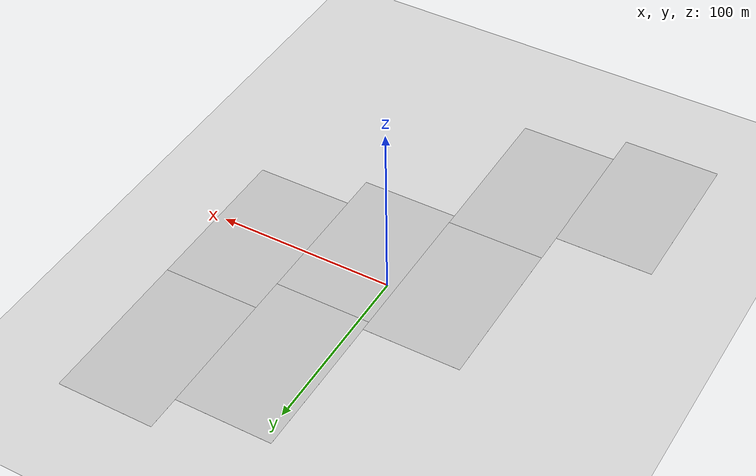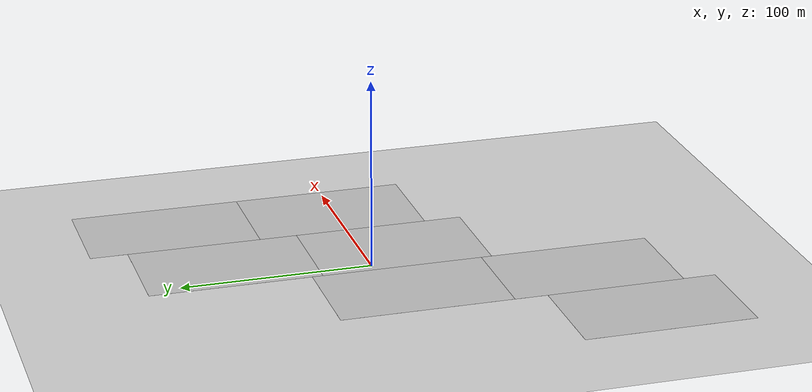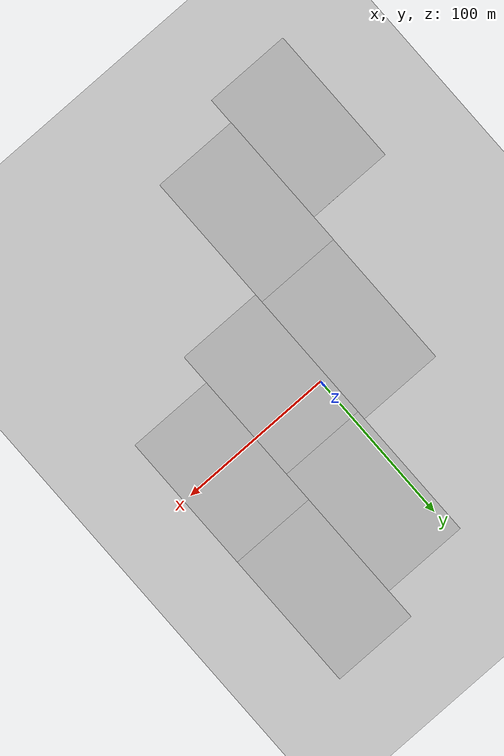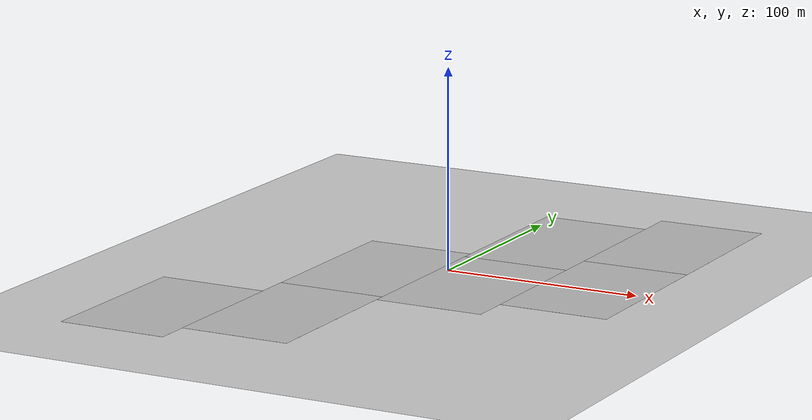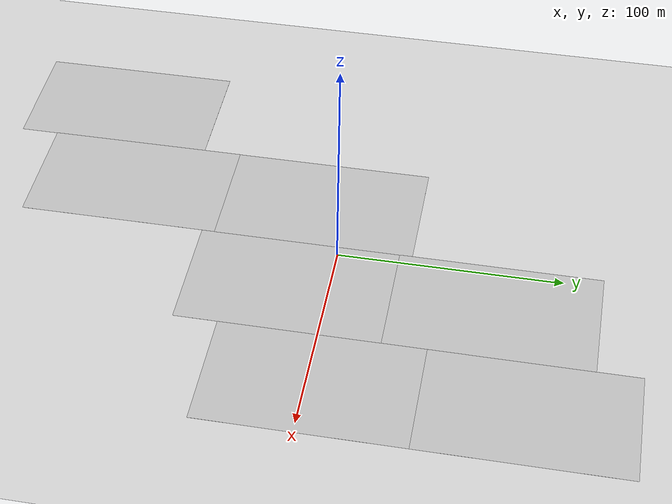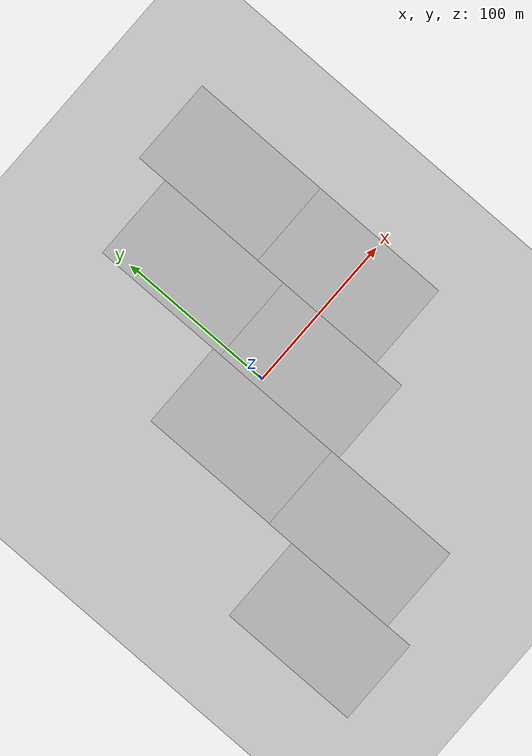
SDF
<sdf version="1.7">
 <world name="default">
  <model name="ground_plane">
   <static>1</static>
   <link name="link">
    <collision name="collision">
     <geometry><plane><normal>0 0 1</normal><size>100 100</size></plane></geometry>
     <surface><friction><ode><mu>100</mu><mu2>50</mu2></ode></friction></surface>
    </collision>
    <visual name="visual">
     <cast_shadows>0</cast_shadows>
     <geometry><plane><normal>0 0 1</normal><size>100 100</size></plane></geometry>
     <material>
      <script><uri>file://media/materials/scripts/gazebo.material</uri><name>Gazebo/Grey</name></script>
     </material>
    </visual>
   </link>
  </model>
  <light name="sun" type="directional">
   <pose>0 0 10 0 -0 0</pose>
   <diffuse>0.8 0.8 0.8 1</diffuse>
   <specular>0.2 0.2 0.2 1</specular>
   <attenuation>
    <range>1000</range>
    <constant>0.9</constant>
    <linear>0.01</linear>
    <quadratic>0.001</quadratic>
   </attenuation>
   <direction>-0.5 0.1 -0.9</direction>
   <spot><inner_angle>0</inner_angle><outer_angle>0</outer_angle><falloff>0</falloff></spot>
  </light>
  <gravity>0 0 -9.8</gravity>
  <magnetic_field>6e-06 2.3e-05 -4.2e-05</magnetic_field>
  <atmosphere type="adiabatic"/>
  <physics type="ode">
   <max_step_size>0.001</max_step_size>
   <real_time_factor>1</real_time_factor>
   <real_time_update_rate>1000</real_time_update_rate>
  </physics>
  <scene><ambient>0.4 0.4 0.4 1</ambient><background>0.7 0.7 0.7 1</background><shadows>1</shadows></scene>
  <spherical_coordinates>
   <surface_model>EARTH_WGS84</surface_model>
   <latitude_deg>0</latitude_deg>
   <longitude_deg>0</longitude_deg>
   <elevation>0</elevation>
   <heading_deg>0</heading_deg>
  </spherical_coordinates>
  <model name="asphalt_ground_plane">
   <static>1</static>
   <link name="link">
    <collision name="collision">
     <geometry><box><size>55 90 0.01</size></box></geometry>
     <surface><friction><ode><mu>100</mu><mu2>50</mu2></ode></friction></surface>
    </collision>
    <visual name="visual">
     <cast_shadows>0</cast_shadows>
     <geometry><box><size>55 90 0.01</size></box></geometry>
     <material>
      <script>
       <uri>model://asphalt_ground_plane/materials/scripts</uri>
       <uri>model://asphalt_ground_plane/materials/textures/</uri>
       <name>AsphaltGroundPlane/Image</name>
      </script>
     </material>
    </visual>
   </link>
   <pose>77.4714 1.72672 0 0 -0 0</pose>
  </model>
  <model name="asphalt_ground_plane_0">
   <static>1</static>
   <link name="link">
    <collision name="collision">
     <geometry><box><size>55 90 0.01</size></box></geometry>
     <surface><friction><ode><mu>100</mu><mu2>50</mu2></ode></friction></surface>
    </collision>
    <visual name="visual">
     <cast_shadows>0</cast_shadows>
     <geometry><box><size>55 90 0.01</size></box></geometry>
     <material>
      <script>
       <uri>model://asphalt_ground_plane/materials/scripts</uri>
       <uri>model://asphalt_ground_plane/materials/textures/</uri>
       <name>AsphaltGroundPlane/Image</name>
      </script>
     </material>
    </visual>
   </link>
   <pose>22.5159 -17.83 0 0 -0 0</pose>
  </model>
  <model name="asphalt_ground_plane_1">
   <static>1</static>
   <link name="link">
    <collision name="collision">
     <geometry><box><size>55 90 0.01</size></box></geometry>
     <surface><friction><ode><mu>100</mu><mu2>50</mu2></ode></friction></surface>
    </collision>
    <visual name="visual">
     <cast_shadows>0</cast_shadows>
     <geometry><box><size>55 90 0.01</size></box></geometry>
     <material>
      <script>
       <uri>model://asphalt_ground_plane/materials/scripts</uri>
       <uri>model://asphalt_ground_plane/materials/textures/</uri>
       <name>AsphaltGroundPlane/Image</name>
      </script>
     </material>
    </visual>
   </link>
   <pose>22.5192 72.1295 0 0 -0 0</pose>
  </model>
  <model name="asphalt_ground_plane_2">
   <static>1</static>
   <link name="link">
    <collision name="collision">
     <geometry><box><size>55 90 0.01</size></box></geometry>
     <surface><friction><ode><mu>100</mu><mu2>50</mu2></ode></friction></surface>
    </collision>
    <visual name="visual">
     <cast_shadows>0</cast_shadows>
     <geometry><box><size>55 90 0.01</size></box></geometry>
     <material>
      <script>
       <uri>model://asphalt_ground_plane/materials/scripts</uri>
       <uri>model://asphalt_ground_plane/materials/textures/</uri>
       <name>AsphaltGroundPlane/Image</name>
      </script>
     </material>
    </visual>
   </link>
   <pose>77.4623 91.7269 0 0 -0 0</pose>
  </model>
  <model name="asphalt_ground_plane_3">
   <static>1</static>
   <link name="link">
    <collision name="collision">
     <geometry><box><size>55 90 0.01</size></box></geometry>
     <surface><friction><ode><mu>100</mu><mu2>50</mu2></ode></friction></surface>
    </collision>
    <visual name="visual">
     <cast_shadows>0</cast_shadows>
     <geometry><box><size>55 90 0.01</size></box></geometry>
     <material>
      <script>
       <uri>model://asphalt_ground_plane/materials/scripts</uri>
       <uri>model://asphalt_ground_plane/materials/textures/</uri>
       <name>AsphaltGroundPlane/Image</name>
      </script>
     </material>
    </visual>
   </link>
   <pose>-32.3726 -12.151 0 0 -0 0</pose>
  </model>
  <model name="asphalt_ground_plane_4">
   <static>1</static>
   <link name="link">
    <collision name="collision">
     <geometry><box><size>55 90 0.01</size></box></geometry>
     <surface><friction><ode><mu>100</mu><mu2>50</mu2></ode></friction></surface>
    </collision>
    <visual name="visual">
     <cast_shadows>0</cast_shadows>
     <geometry><box><size>55 90 0.01</size></box></geometry>
     <material>
      <script>
       <uri>model://asphalt_ground_plane/materials/scripts</uri>
       <uri>model://asphalt_ground_plane/materials/textures/</uri>
       <name>AsphaltGroundPlane/Image</name>
      </script>
     </material>
    </visual>
   </link>
   <pose>-32.4746 -102.137 0 0 -0 0</pose>
  </model>
  <model name="asphalt_ground_plane_5">
   <static>1</static>
   <link name="link">
    <collision name="collision">
     <geometry><box><size>55 90 0.01</size></box></geometry>
     <surface><friction><ode><mu>100</mu><mu2>50</mu2></ode></friction></surface>
    </collision>
    <visual name="visual">
     <cast_shadows>0</cast_shadows>
     <geometry><box><size>55 90 0.01</size></box></geometry>
     <material>
      <script>
       <uri>model://asphalt_ground_plane/materials/scripts</uri>
       <uri>model://asphalt_ground_plane/materials/textures/</uri>
       <name>AsphaltGroundPlane/Image</name>
      </script>
     </material>
    </visual>
   </link>
   <pose>-87.2887 -119.318 0 0 -0 0</pose>
  </model>
 </world>
</sdf>
